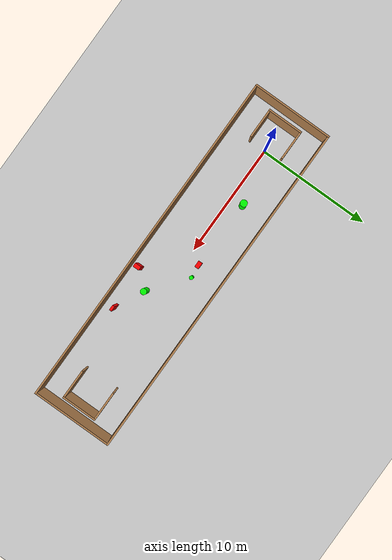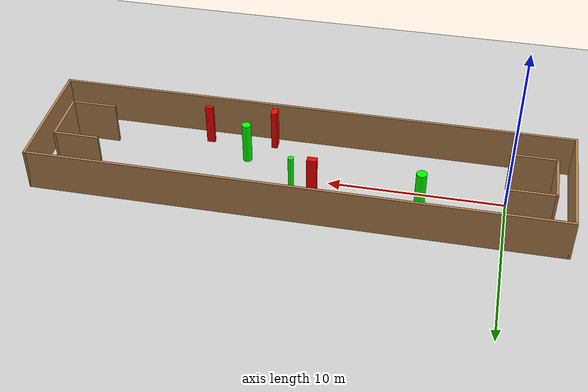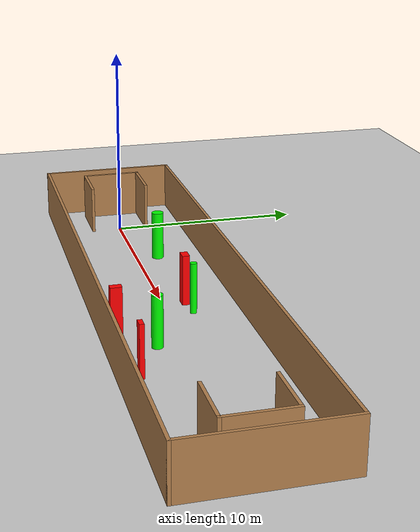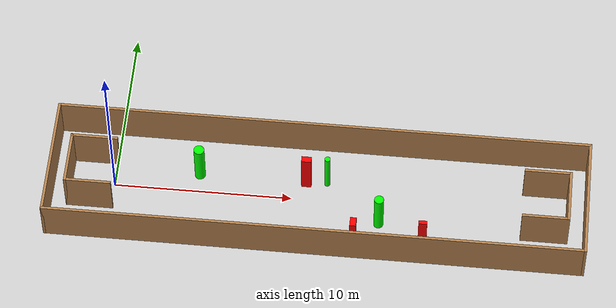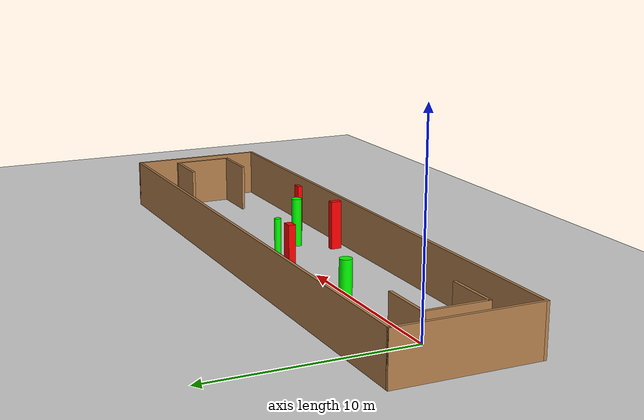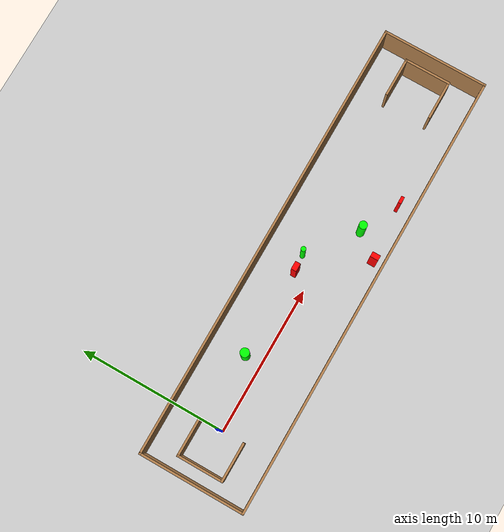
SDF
<sdf version="1.7">
 <world name="default">
  <light name="sun" type="directional">
   <pose>0 0 10 0 -0 0</pose>
   <diffuse>0.8 0.8 0.8 1</diffuse>
   <specular>0.2 0.2 0.2 1</specular>
   <attenuation>
    <range>1000</range>
    <constant>0.9</constant>
    <linear>0.01</linear>
    <quadratic>0.001</quadratic>
   </attenuation>
   <direction>-0.5 0.1 -0.9</direction>
   <spot><inner_angle>0</inner_angle><outer_angle>0</outer_angle><falloff>0</falloff></spot>
  </light>
  <model name="ground_plane">
   <static>1</static>
   <link name="link">
    <collision name="collision">
     <geometry><plane><normal>0 0 1</normal><size>100 100</size></plane></geometry>
     <surface>
      <contact><collide_bitmask>65535</collide_bitmask></contact>
      <friction><ode><mu>100</mu><mu2>50</mu2></ode></friction>
     </surface>
    </collision>
    <visual name="visual">
     <cast_shadows>0</cast_shadows>
     <geometry><plane><normal>0 0 1</normal><size>100 100</size></plane></geometry>
     <material>
      <script><uri>file://media/materials/scripts/gazebo.material</uri><name>Gazebo/Grey</name></script>
     </material>
    </visual>
   </link>
  </model>
  <gravity>0 0 -9.8</gravity>
  <magnetic_field>6e-06 2.3e-05 -4.2e-05</magnetic_field>
  <atmosphere type="adiabatic"/>
  <physics type="ode">
   <max_step_size>0.001</max_step_size>
   <real_time_factor>1</real_time_factor>
   <real_time_update_rate>1000</real_time_update_rate>
  </physics>
  <scene><ambient>0.4 0.4 0.4 1</ambient><background>0.7 0.7 0.7 1</background><shadows>1</shadows></scene>
  <spherical_coordinates>
   <surface_model>EARTH_WGS84</surface_model>
   <latitude_deg>0</latitude_deg>
   <longitude_deg>0</longitude_deg>
   <elevation>0</elevation>
   <heading_deg>0</heading_deg>
  </spherical_coordinates>
  <model name="my_base_walls">
   <link name="Wall_0">
    <collision name="Wall_0_Collision">
     <geometry><box><size>7.15 0.15 2.5</size></box></geometry>
     <pose>0 0 1.25 0 -0 0</pose>
    </collision>
    <visual name="Wall_0_Visual">
     <pose>0 0 1.25 0 -0 0</pose>
     <geometry><box><size>7.15 0.15 2.5</size></box></geometry>
     <material>
      <script><uri>file://media/materials/scripts/gazebo.material</uri><name>Gazebo/Wood</name></script>
      <ambient>1 1 1 1</ambient>
     </material>
     <meta><layer>0</layer></meta>
    </visual>
    <pose>-15 0 0 0 -0 1.5708</pose>
   </link>
   <link name="Wall_10">
    <collision name="Wall_10_Collision">
     <geometry><box><size>2.65 0.15 2.5</size></box></geometry>
     <pose>0 0 1.25 0 -0 0</pose>
    </collision>
    <visual name="Wall_10_Visual">
     <pose>0 0 1.25 0 -0 0</pose>
     <geometry><box><size>2.65 0.15 2.5</size></box></geometry>
     <material>
      <script><uri>file://media/materials/scripts/gazebo.material</uri><name>Gazebo/Wood</name></script>
      <ambient>1 1 1 1</ambient>
     </material>
     <meta><layer>0</layer></meta>
    </visual>
    <pose>-12.75 -1.5 0 0 -0 0</pose>
   </link>
   <link name="Wall_12">
    <collision name="Wall_12_Collision">
     <geometry><box><size>2.65 0.15 2.5</size></box></geometry>
     <pose>0 0 1.25 0 -0 0</pose>
    </collision>
    <visual name="Wall_12_Visual">
     <pose>0 0 1.25 0 -0 0</pose>
     <geometry><box><size>2.65 0.15 2.5</size></box></geometry>
     <material>
      <script><uri>file://media/materials/scripts/gazebo.material</uri><name>Gazebo/Wood</name></script>
      <ambient>1 1 1 1</ambient>
     </material>
     <meta><layer>0</layer></meta>
    </visual>
    <pose>-12.75 1.5 0 0 -0 0</pose>
   </link>
   <link name="Wall_14">
    <collision name="Wall_14_Collision">
     <geometry><box><size>3.15 0.15 2.5</size></box></geometry>
     <pose>0 0 1.25 0 -0 0</pose>
    </collision>
    <visual name="Wall_14_Visual">
     <pose>0 0 1.25 0 -0 0</pose>
     <geometry><box><size>3.15 0.15 2.5</size></box></geometry>
     <material>
      <script><uri>file://media/materials/scripts/gazebo.material</uri><name>Gazebo/Wood</name></script>
      <ambient>1 1 1 1</ambient>
     </material>
     <meta><layer>0</layer></meta>
    </visual>
    <pose>14 0 0 0 -0 -1.5708</pose>
   </link>
   <link name="Wall_15">
    <collision name="Wall_15_Collision">
     <geometry><box><size>2.65 0.15 2.5</size></box></geometry>
     <pose>0 0 1.25 0 -0 0</pose>
    </collision>
    <visual name="Wall_15_Visual">
     <pose>0 0 1.25 0 -0 0</pose>
     <geometry><box><size>2.65 0.15 2.5</size></box></geometry>
     <material>
      <script><uri>file://media/materials/scripts/gazebo.material</uri><name>Gazebo/Wood</name></script>
      <ambient>1 1 1 1</ambient>
     </material>
     <meta><layer>0</layer></meta>
    </visual>
    <pose>12.75 -1.5 0 0 -0 3.14159</pose>
   </link>
   <link name="Wall_17">
    <collision name="Wall_17_Collision">
     <geometry><box><size>2.65 0.15 2.5</size></box></geometry>
     <pose>0 0 1.25 0 -0 0</pose>
    </collision>
    <visual name="Wall_17_Visual">
     <pose>0 0 1.25 0 -0 0</pose>
     <geometry><box><size>2.65 0.15 2.5</size></box></geometry>
     <material>
      <script><uri>file://media/materials/scripts/gazebo.material</uri><name>Gazebo/Wood</name></script>
      <ambient>1 1 1 1</ambient>
     </material>
     <meta><layer>0</layer></meta>
    </visual>
    <pose>12.75 1.5 0 0 -0 3.14159</pose>
   </link>
   <link name="Wall_2">
    <collision name="Wall_2_Collision">
     <geometry><box><size>30.15 0.15 2.5</size></box></geometry>
     <pose>0 0 1.25 0 -0 0</pose>
    </collision>
    <visual name="Wall_2_Visual">
     <pose>0 0 1.25 0 -0 0</pose>
     <geometry><box><size>30.15 0.15 2.5</size></box></geometry>
     <material>
      <script><uri>file://media/materials/scripts/gazebo.material</uri><name>Gazebo/Wood</name></script>
      <ambient>1 1 1 1</ambient>
     </material>
     <meta><layer>0</layer></meta>
    </visual>
    <pose>-0 -3.5 0 0 -0 0</pose>
   </link>
   <link name="Wall_4">
    <collision name="Wall_4_Collision">
     <geometry><box><size>30.15 0.15 2.5</size></box></geometry>
     <pose>0 0 1.25 0 -0 0</pose>
    </collision>
    <visual name="Wall_4_Visual">
     <pose>0 0 1.25 0 -0 0</pose>
     <geometry><box><size>30.15 0.15 2.5</size></box></geometry>
     <material>
      <script><uri>file://media/materials/scripts/gazebo.material</uri><name>Gazebo/Wood</name></script>
      <ambient>1 1 1 1</ambient>
     </material>
     <meta><layer>0</layer></meta>
    </visual>
    <pose>-0 3.5 0 0 -0 0</pose>
   </link>
   <link name="Wall_6">
    <collision name="Wall_6_Collision">
     <geometry><box><size>7.15 0.15 2.5</size></box></geometry>
     <pose>0 0 1.25 0 -0 0</pose>
    </collision>
    <visual name="Wall_6_Visual">
     <pose>0 0 1.25 0 -0 0</pose>
     <geometry><box><size>7.15 0.15 2.5</size></box></geometry>
     <material>
      <script><uri>file://media/materials/scripts/gazebo.material</uri><name>Gazebo/Wood</name></script>
      <ambient>1 1 1 1</ambient>
     </material>
     <meta><layer>0</layer></meta>
    </visual>
    <pose>15 0 0 0 -0 -1.5708</pose>
   </link>
   <link name="Wall_9">
    <collision name="Wall_9_Collision">
     <geometry><box><size>3.15 0.15 2.5</size></box></geometry>
     <pose>0 0 1.25 0 -0 0</pose>
    </collision>
    <visual name="Wall_9_Visual">
     <pose>0 0 1.25 0 -0 0</pose>
     <geometry><box><size>3.15 0.15 2.5</size></box></geometry>
     <material>
      <script><uri>file://media/materials/scripts/gazebo.material</uri><name>Gazebo/Wood</name></script>
      <ambient>1 1 1 1</ambient>
     </material>
     <meta><layer>0</layer></meta>
    </visual>
    <pose>-14 0 0 0 -0 -1.5708</pose>
   </link>
   <static>1</static>
   <pose>11.5 0 0 0 -0 0</pose>
  </model>
  <model name="cylinder1">
   <static>1</static>
   <link name="link">
    <inertial>
     <mass>1</mass>
     <inertia><ixx>0.5</ixx><ixy>0</ixy><ixz>0</ixz><iyy>0.5</iyy><iyz>0</iyz><izz>1</izz></inertia>
    </inertial>
    <collision name="collision">
     <geometry><cylinder><radius>0.26576476807180266</radius><length>2.5</length></cylinder></geometry>
    </collision>
    <visual name="visual">
     <geometry><cylinder><radius>0.26576476807180266</radius><length>2.5</length></cylinder></geometry>
     <material>
      <ambient>0 1 0 1</ambient>
      <diffuse>0 1 0 1</diffuse>
      <specular>0.1 0.1 0.1 1</specular>
      <emissive>0 0 0 0</emissive>
     </material>
    </visual>
   </link>
   <pose>15.00698289876815 -1.2507988894447344 1.25 0 0 0</pose>
  </model>
  <model name="cylinder2">
   <static>1</static>
   <link name="link">
    <inertial>
     <mass>1</mass>
     <inertia><ixx>0.5</ixx><ixy>0</ixy><ixz>0</ixz><iyy>0.5</iyy><iyz>0</iyz><izz>1</izz></inertia>
    </inertial>
    <collision name="collision">
     <geometry><cylinder><radius>0.16329129896841788</radius><length>2.5</length></cylinder></geometry>
    </collision>
    <visual name="visual">
     <geometry><cylinder><radius>0.16329129896841788</radius><length>2.5</length></cylinder></geometry>
     <material>
      <ambient>0 1 0 1</ambient>
      <diffuse>0 1 0 1</diffuse>
      <specular>0.1 0.1 0.1 1</specular>
      <emissive>0 0 0 0</emissive>
     </material>
    </visual>
   </link>
   <pose>11.916857772782123 1.176976557128257 1.25 0 0 0</pose>
  </model>
  <model name="cylinder3">
   <static>1</static>
   <link name="link">
    <inertial>
     <mass>1</mass>
     <inertia><ixx>0.5</ixx><ixy>0</ixy><ixz>0</ixz><iyy>0.5</iyy><iyz>0</iyz><izz>1</izz></inertia>
    </inertial>
    <collision name="collision">
     <geometry><cylinder><radius>0.2984484552436004</radius><length>2.5</length></cylinder></geometry>
    </collision>
    <visual name="visual">
     <geometry><cylinder><radius>0.2984484552436004</radius><length>2.5</length></cylinder></geometry>
     <material>
      <ambient>0 1 0 1</ambient>
      <diffuse>0 1 0 1</diffuse>
      <specular>0.1 0.1 0.1 1</specular>
      <emissive>0 0 0 0</emissive>
     </material>
    </visual>
   </link>
   <pose>4.704116891368692 1.1217585064328848 1.25 0 0 0</pose>
  </model>
  <model name="box1">
   <static>1</static>
   <link name="link">
    <inertial>
     <mass>1</mass>
     <inertia><ixx>0.083</ixx><ixy>0</ixy><ixz>0</ixz><iyy>0.083</iyy><iyz>0</iyz><izz>0.083</izz></inertia>
    </inertial>
    <collision name="collision">
     <geometry><box><size>0.5547600493629987 0.35586290554606237 2.5</size></box></geometry>
    </collision>
    <visual name="visual">
     <geometry><box><size>0.5547600493629987 0.35586290554606237 2.5</size></box></geometry>
     <material>
      <ambient>1 0 0 1</ambient>
      <diffuse>1 0 0 1</diffuse>
      <specular>0.1 0.1 0.1 1</specular>
      <emissive>0 0 0 0</emissive>
     </material>
    </visual>
    <sensor name="my_contact" type="contact">
     <contact><collision>box_collision</collision><topic>__default_topic__</topic></contact>
    </sensor>
   </link>
   <pose>10.752616406833043 1.050994394178356 1.25 0 0 0</pose>
  </model>
  <model name="box2">
   <static>1</static>
   <link name="link">
    <inertial>
     <mass>1</mass>
     <inertia><ixx>0.083</ixx><ixy>0</ixy><ixz>0</ixz><iyy>0.083</iyy><iyz>0</iyz><izz>0.083</izz></inertia>
    </inertial>
    <collision name="collision">
     <geometry><box><size>0.34548839077458166 0.5481656135755814 2.5</size></box></geometry>
    </collision>
    <visual name="visual">
     <geometry><box><size>0.34548839077458166 0.5481656135755814 2.5</size></box></geometry>
     <material>
      <ambient>1 0 0 1</ambient>
      <diffuse>1 0 0 1</diffuse>
      <specular>0.1 0.1 0.1 1</specular>
      <emissive>0 0 0 0</emissive>
     </material>
    </visual>
    <sensor name="my_contact" type="contact">
     <contact><collision>box_collision</collision><topic>__default_topic__</topic></contact>
    </sensor>
   </link>
   <pose>13.693329863467431 -2.8219982783493833 1.25 0 0 0</pose>
  </model>
  <model name="box3">
   <static>1</static>
   <link name="link">
    <inertial>
     <mass>1</mass>
     <inertia><ixx>0.083</ixx><ixy>0</ixy><ixz>0</ixz><iyy>0.083</iyy><iyz>0</iyz><izz>0.083</izz></inertia>
    </inertial>
    <collision name="collision">
     <geometry><box><size>0.46756124716053016 0.2162784213475588 2.5</size></box></geometry>
    </collision>
    <visual name="visual">
     <geometry><box><size>0.46756124716053016 0.2162784213475588 2.5</size></box></geometry>
     <material>
      <ambient>1 0 0 1</ambient>
      <diffuse>1 0 0 1</diffuse>
      <specular>0.1 0.1 0.1 1</specular>
      <emissive>0 0 0 0</emissive>
     </material>
    </visual>
    <sensor name="my_contact" type="contact">
     <contact><collision>box_collision</collision><topic>__default_topic__</topic></contact>
    </sensor>
   </link>
   <pose>17.524245408256093 -2.5115449891396033 1.25 0 0 0</pose>
  </model>
 </world>
</sdf>
